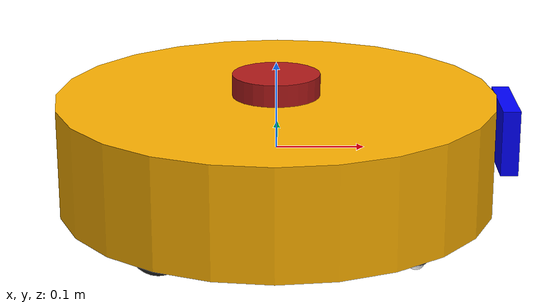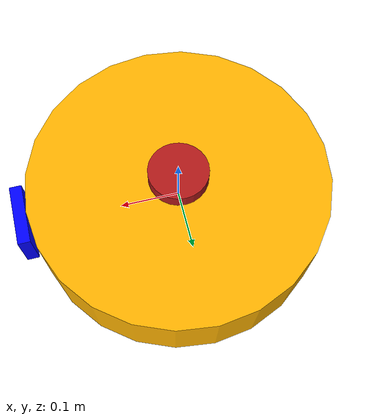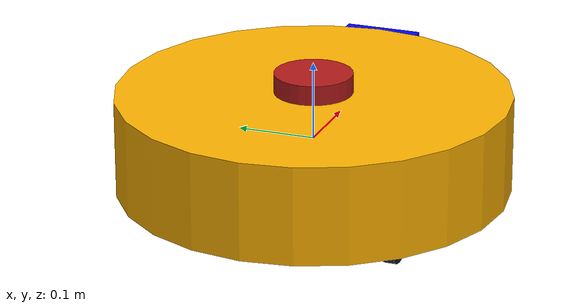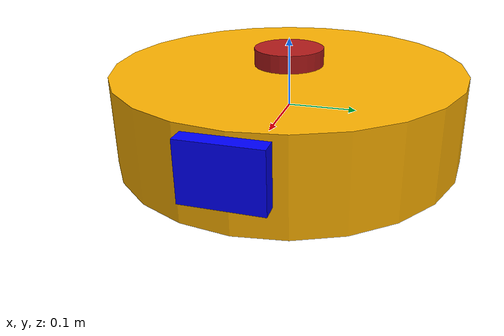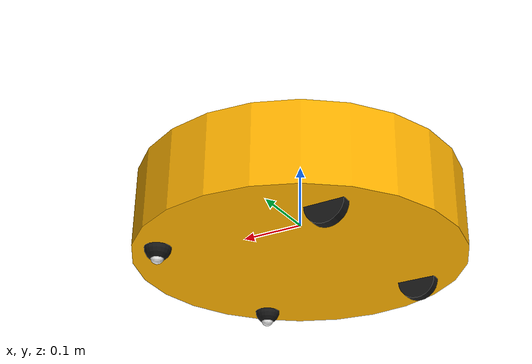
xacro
<?xml version="1.0"?>

<robot name="robot" xmlns:xacro="http://www.ros.org/wiki/xacro">

    <xacro:include filename="$(find obstacle_avoidance)/urdf/robot.gazebo" />

    <!-- Link - base_link -->
    <link name="base_link"></link>

    <!-- Joint - base_link/chassis -->
    <joint name="joint_base_link_chassis" type="fixed">
        <origin rpy="0 0 0" xyz="0 0 0" />
        <child link="link_chassis" />
        <parent link="base_link" />
        <joint_properties damping="1.0" friction="1.0" />
    </joint>

    <!-- Link - chassis -->
    <link name="link_chassis">
        <inertial>
            <mass value="10" />
            <origin xyz="0 0 0.0625" rpy="0 0 0" />
            <inertia ixx="0.2604" ixy="0" ixz="0" iyy="0.2604" iyz="0" izz="0.3125" />
        </inertial>

        <collision>
            <geometry>
                <cylinder length="0.125" radius="0.25" />
            </geometry>
        </collision>

        <visual>
            <geometry>
                <cylinder length="0.125" radius="0.25" />
            </geometry>
            <material name="GoldenYellow">
                <color rgba="1.0 0.7 0.0 1.0" />
            </material>
        </visual>
    </link>

    <!-- Joint - chassis/left_caster_wheel -->
    <joint name="joint_chassis_left_caster_wheel" type="fixed">
        <origin rpy="0 0 0" xyz="0.15 0.15 -0.0625" />
        <child link="link_left_caster_wheel" />
        <parent link="link_chassis" />
        <joint_properties damping="1.0" friction="1.0" />
    </joint>

    <!-- Link - left_caster_wheel -->
    <link name="link_left_caster_wheel">
        <inertial>
            <mass value="0.5" />
            <origin xyz="0 0 0" rpy="0 0 0" />
            <inertia ixx="0.00008" ixy="0" ixz="0" iyy="0.00008" iyz="0" izz="0.00008"/>
        </inertial>

        <!-- caster wheel support -->
        <collision>
            <origin rpy="0 0 0" xyz="0 0 0" />
            <geometry>
                <sphere radius="0.02" />
            </geometry>
        </collision>
        <visual>
            <origin rpy="0 0 0" xyz="0 0 0" />
            <geometry>
                <sphere radius="0.02" />
            </geometry>
            <material name="Black">
                <color rgba="0.1 0.1 0.1 1.0" />
            </material>
        </visual>

        <!-- caster wheel -->
        <collision>
            <origin rpy="0 0 0" xyz="0 0 -0.015" />
            <geometry>
                <sphere radius="0.01" />
            </geometry>
        </collision>
        <visual>
            <origin rpy="0 0 0" xyz="0 0 -0.015" />
            <geometry>
                <sphere radius="0.01" />
            </geometry>
            <material name="White">
                <color rgba="1.0 1.0 1.0 1.0" />
            </material>
        </visual>
    </link>

    <!-- Joint - chassis/right_caster_wheel -->
    <joint name="joint_chassis_right_caster_wheel" type="fixed">
        <origin rpy="0 0 0" xyz="0.15 -0.15 -0.0625" />
        <child link="link_right_caster_wheel" />
        <parent link="link_chassis" />
        <joint_properties damping="1.0" friction="1.0" />
    </joint>

    <!-- Link - right_caster_wheel -->
    <link name="link_right_caster_wheel">
        <inertial>
            <mass value="0.5" />
            <origin xyz="0 0 0" rpy="0 0 0" />
            <inertia ixx="0.00008" ixy="0" ixz="0" iyy="0.00008" iyz="0" izz="0.00008"/>
        </inertial>

        <!-- caster wheel support -->
        <collision>
            <origin rpy="0 0 0" xyz="0 0 0" />
            <geometry>
                <sphere radius="0.02" />
            </geometry>
        </collision>
        <visual>
            <origin rpy="0 0 0" xyz="0 0 0" />
            <geometry>
                <sphere radius="0.02" />
            </geometry>
            <material name="Black">
                <color rgba="0.1 0.1 0.1 1.0" />
            </material>
        </visual>

        <!-- caster wheel -->
        <collision>
            <origin rpy="0 0 0" xyz="0 0 -0.015" />
            <geometry>
                <sphere radius="0.01" />
            </geometry>
        </collision>
        <visual>
            <origin rpy="0 0 0" xyz="0 0 -0.015" />
            <geometry>
                <sphere radius="0.01" />
            </geometry>
            <material name="White">
                <color rgba="1.0 1.0 1.0 1.0" />
            </material>
        </visual>
    </link>

    <!-- Joint - chassis/left_wheel -->
    <joint name="joint_chassis_left_wheel" type="continuous">
        <origin rpy="0 0 0" xyz="-0.125 0.15 -0.0625" />
        <child link="link_left_wheel" />
        <parent link="link_chassis" />
        <axis rpy="0 0 0" xyz="0 1 0" />
        <limit effort="10000" velocity="1000" />
        <joint_properties damping="1.0" friction="1.0" />
    </joint>

    <!-- Link - left_wheel -->
    <link name="link_left_wheel">
        <inertial>
            <mass value="1" />
            <origin xyz="0 0 0" rpy="0 0 0" />
            <inertia ixx="0.001475" ixy="0" ixz="0" iyy="0.001475" iyz="0" izz="0.00045"/>
        </inertial>

        <!-- tires -->
        <collision>
            <origin rpy="1.57079 0 0" xyz="0 0 0" />
            <geometry>
                <cylinder length="0.015" radius="0.03"/>
            </geometry>
        </collision>
        <visual>
            <origin rpy="1.57079 0 0" xyz="0 0 0" />
            <geometry>
                <cylinder length="0.015" radius="0.03"/>
            </geometry>
            <material name="Black">
                <color rgba="0.1 0.1 0.1 1.0" />
            </material>
        </visual>
    </link>

    <!-- Joint - chassis/right_wheel -->
    <joint name="joint_chassis_right_wheel" type="continuous">
        <origin rpy="0 0 0" xyz="-0.125 -0.15 -0.0625" />
        <child link="link_right_wheel" />
        <parent link="link_chassis" />
        <axis rpy="0 0 0" xyz="0 1 0" />
        <limit effort="10000" velocity="1000" />
        <joint_properties damping="1.0" friction="1.0" />
    </joint>

    <!-- Link - right_wheel -->
    <link name="link_right_wheel">
        <inertial>
            <mass value="1" />
            <origin xyz="0 0 0" rpy="0 0 0" />
            <inertia ixx="0.001475" ixy="0" ixz="0" iyy="0.001475" iyz="0" izz="0.00045"/>
        </inertial>

        <!-- tires -->
        <collision>
            <origin rpy="1.57079 0 0" xyz="0 0 0" />
            <geometry>
                <cylinder length="0.015" radius="0.03"/>
            </geometry>
        </collision>
        <visual>
            <origin rpy="1.57079 0 0" xyz="0 0 0" />
            <geometry>
                <cylinder length="0.015" radius="0.03"/>
            </geometry>
            <material name="Black">
                <color rgba="0.1 0.1 0.1 1.0" />
            </material>
        </visual>
    </link>

    <!-- Joint - chassis/laser_scan -->
    <joint name="joint_chassis_laser_scan" type="fixed">
        <origin rpy="0 0 0" xyz="0 0 0.075" />
        <child link="link_laser_scan" />
        <parent link="link_chassis" />
        <joint_properties damping="1.0" friction="1.0" />
    </joint>

    <!-- Link - laser_scan -->
    <link name="link_laser_scan">
        <inertial>
            <origin xyz="0 0 0" rpy="0 0 0" />
            <mass value="0.5" />
            <inertia ixx="0.00135416666666667" ixy="0" ixz="0" iyy="0.00135416666666667" iyz="0" izz="0.000625"/>
        </inertial>
        <visual>
            <origin xyz="0 0 0" rpy="0 0 0" />
            <geometry>
                <cylinder radius="0.05" length="0.025"/>
            </geometry>
            <material name="Red">
                <color rgba="0.7 0.1 0.1 1" />
            </material>
        </visual>
        <collision>
            <origin xyz="0 0 0" rpy="0 0 0"/>
            <geometry>
                <cylinder radius="0.05" length="0.025"/>
            </geometry>
        </collision>
    </link>

    <!-- Joint between link_chassis and link_camera -->
    <joint name="joint_chassis_camera" type="fixed">
        <parent link="link_chassis"/>
        <child link="link_camera"/>
        <origin xyz="0.261 0 0.02" rpy="0 0 0"/>
    </joint>

    <!-- Link - link_camera -->
    <link name="link_camera">
        <inertial>
            <mass value="0.5" />
            <origin xyz="0 0 0" rpy="0 0 0" />
            <inertia ixx="0.002083" ixy="0" ixz="0" iyy="0.002083" iyz="0" izz="0.002083" />
        </inertial>
        <visual>
            <origin xyz="0 0 0" rpy="0 0 0" />
            <geometry>
                <box size="0.02 0.1 0.075" />
            </geometry>
            <material name="Blue">
                <color rgba="0.0 0.0 1.0 1.0" />
            </material>
        </visual>
        <collision>
            <origin xyz="0 0 0" rpy="0 0 0"/>
            <geometry>
                <box size="0.02 0.1 0.075" />
            </geometry>
        </collision>
    </link>

</robot>
